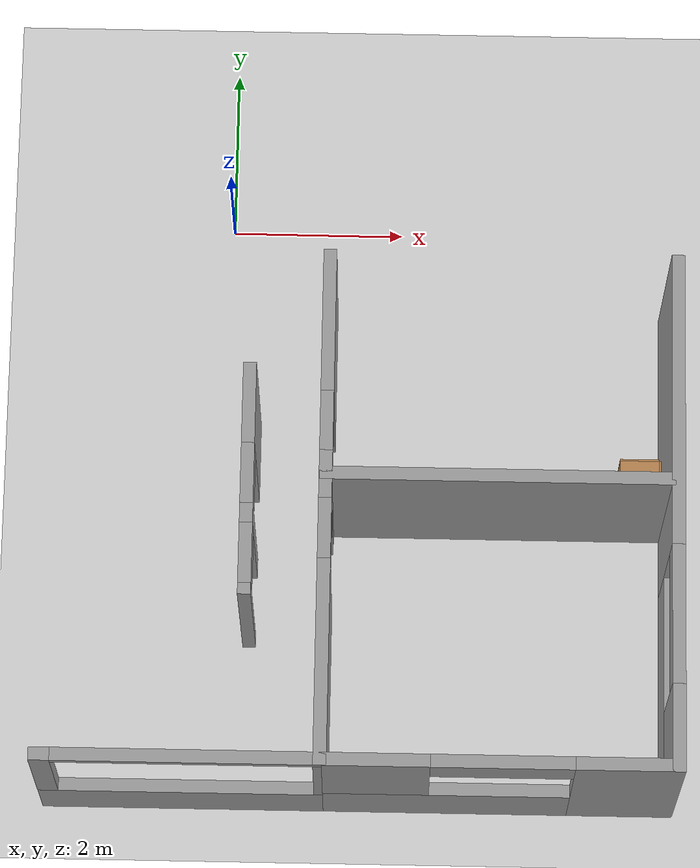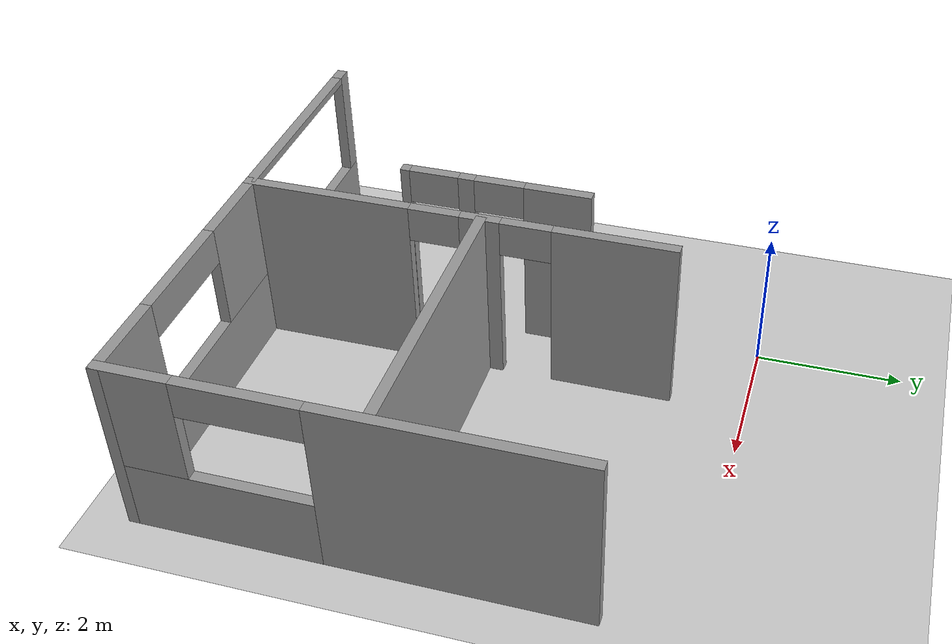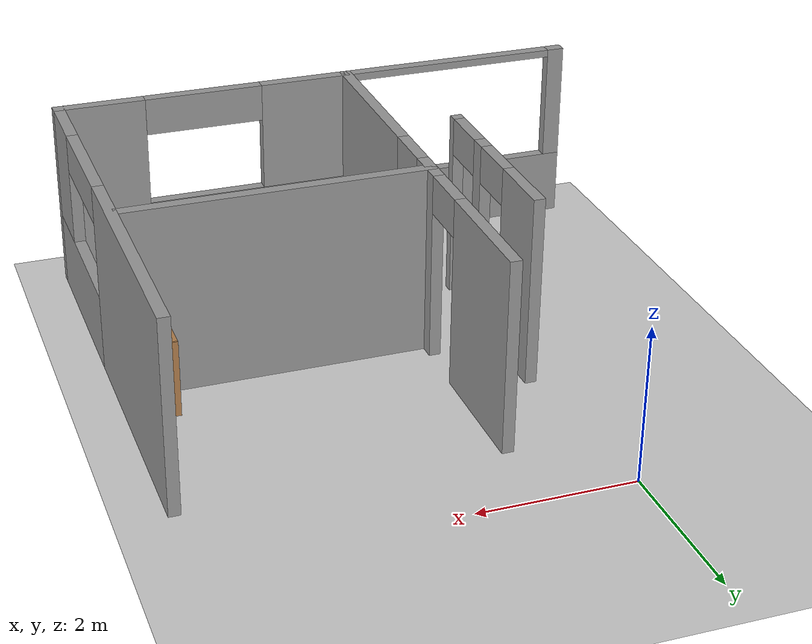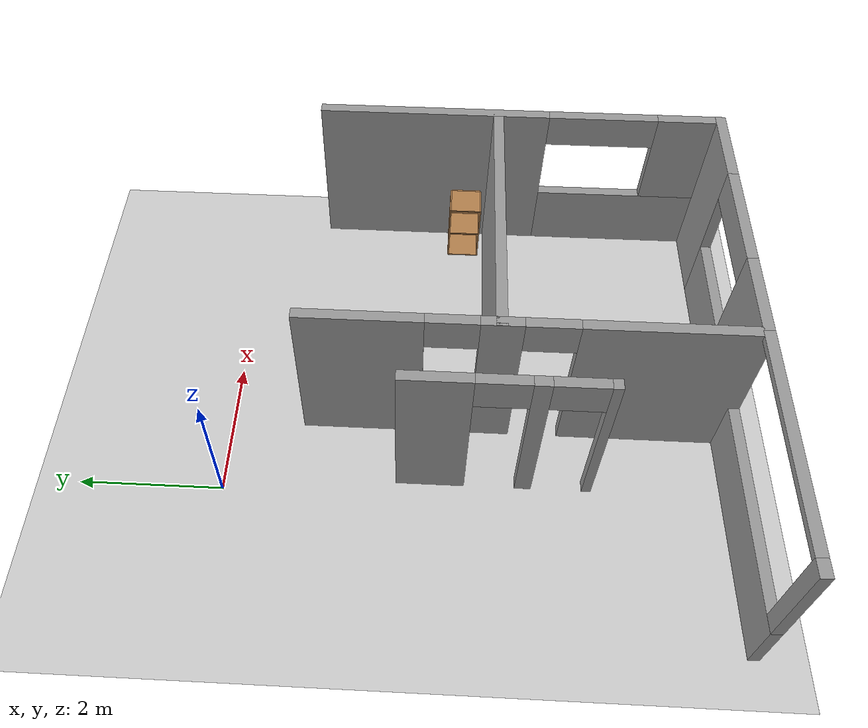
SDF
<sdf version="1.7">
 <world name="default">
  <model name="ground_plane">
   <static>1</static>
   <link name="link">
    <collision name="collision">
     <geometry><plane><normal>0 0 1</normal><size>100 100</size></plane></geometry>
     <surface>
      <contact><collide_bitmask>65535</collide_bitmask></contact>
      <friction><ode><mu>100</mu><mu2>50</mu2></ode></friction>
     </surface>
    </collision>
    <visual name="visual">
     <cast_shadows>0</cast_shadows>
     <geometry><plane><normal>0 0 1</normal><size>100 100</size></plane></geometry>
     <material>
      <script><uri>file://media/materials/scripts/gazebo.material</uri><name>Gazebo/Grey</name></script>
     </material>
    </visual>
   </link>
  </model>
  <model name="Myhouse">
   <link name="Wall_17">
    <pose>2.26458 -1.5613 0 0 -0 3.14159</pose>
    <visual name="Wall_17_Visual">
     <pose>0 0 1.25 0 -0 0</pose>
     <geometry><box><size>4 0.15 2.5</size></box></geometry>
     <material>
      <script><uri>file://media/materials/scripts/gazebo.material</uri><name>Gazebo/Grey</name></script>
      <ambient>1 1 1 1</ambient>
      <shader type="pixel"/>
     </material>
     <meta><layer>0</layer></meta>
    </visual>
    <collision name="Wall_17_Collision">
     <pose>0 0 1.25 0 -0 0</pose>
     <geometry><box><size>4 0.15 2.5</size></box></geometry>
     <surface>
      <friction>
       <ode><mu>1</mu><mu2>1</mu2><fdir1>0 0 0</fdir1><slip1>0</slip1><slip2>0</slip2></ode>
       <torsional>
        <coefficient>1</coefficient>
        <patch_radius>0</patch_radius>
        <surface_radius>0</surface_radius>
        <use_patch_radius>1</use_patch_radius>
        <ode><slip>0</slip></ode>
       </torsional>
      </friction>
      <bounce><restitution_coefficient>0</restitution_coefficient><threshold>1e+06</threshold></bounce>
      <contact>
       <collide_without_contact>0</collide_without_contact>
       <collide_without_contact_bitmask>1</collide_without_contact_bitmask>
       <collide_bitmask>1</collide_bitmask>
       <ode>
        <soft_cfm>0</soft_cfm>
        <soft_erp>0.2</soft_erp>
        <kp>1e+13</kp>
        <kd>1</kd>
        <max_vel>0.01</max_vel>
        <min_depth>0</min_depth>
       </ode>
       <bullet>
        <split_impulse>1</split_impulse>
        <split_impulse_penetration_threshold>-0.01</split_impulse_penetration_threshold>
        <soft_cfm>0</soft_cfm>
        <soft_erp>0.2</soft_erp>
        <kp>1e+13</kp>
        <kd>1</kd>
       </bullet>
      </contact>
     </surface>
    </collision>
   </link>
   <link name="Wall_23">
    <pose>0.334124 -1.9144 0 0 -0 1.5708</pose>
    <visual name="Wall_23_Visual_0">
     <pose>-1.81879 0 1.25 0 -0 0</pose>
     <geometry><box><size>2.36243 0.15 2.5</size></box></geometry>
     <material>
      <script><uri>file://media/materials/scripts/gazebo.material</uri><name>Gazebo/Grey</name></script>
      <ambient>1 1 1 1</ambient>
      <shader type="pixel"/>
     </material>
     <meta><layer>0</layer></meta>
    </visual>
    <visual name="Wall_23_Visual_1">
     <pose>0.340045 0 1.25 0 -0 0</pose>
     <geometry><box><size>0.555232 0.15 2.5</size></box></geometry>
     <material>
      <script><uri>file://media/materials/scripts/gazebo.material</uri><name>Gazebo/Grey</name></script>
      <ambient>1 1 1 1</ambient>
      <shader type="pixel"/>
     </material>
     <meta><layer>0</layer></meta>
    </visual>
    <visual name="Wall_23_Visual_2">
     <pose>2.15883 0 1.25 0 -0 0</pose>
     <geometry><box><size>1.68234 0.15 2.5</size></box></geometry>
     <material>
      <script><uri>file://media/materials/scripts/gazebo.material</uri><name>Gazebo/Grey</name></script>
      <ambient>1 1 1 1</ambient>
      <shader type="pixel"/>
     </material>
     <meta><layer>0</layer></meta>
    </visual>
    <visual name="Wall_23_Visual_3">
     <pose>-0.287571 0 2.25 0 -0 0</pose>
     <geometry><box><size>0.7 0.15 0.5</size></box></geometry>
     <material>
      <script><uri>file://media/materials/scripts/gazebo.material</uri><name>Gazebo/Grey</name></script>
      <ambient>1 1 1 1</ambient>
      <shader type="pixel"/>
     </material>
     <meta><layer>0</layer></meta>
    </visual>
    <visual name="Wall_23_Visual_4">
     <pose>0.967661 0 2.25 0 -0 0</pose>
     <geometry><box><size>0.7 0.15 0.5</size></box></geometry>
     <material>
      <script><uri>file://media/materials/scripts/gazebo.material</uri><name>Gazebo/Grey</name></script>
      <ambient>1 1 1 1</ambient>
      <shader type="pixel"/>
     </material>
     <meta><layer>0</layer></meta>
    </visual>
    <collision name="Wall_23_Collision_0">
     <pose>-1.81879 0 1.25 0 -0 0</pose>
     <geometry><box><size>2.36243 0.15 2.5</size></box></geometry>
     <surface>
      <friction>
       <ode><mu>1</mu><mu2>1</mu2><fdir1>0 0 0</fdir1><slip1>0</slip1><slip2>0</slip2></ode>
       <torsional>
        <coefficient>1</coefficient>
        <patch_radius>0</patch_radius>
        <surface_radius>0</surface_radius>
        <use_patch_radius>1</use_patch_radius>
        <ode><slip>0</slip></ode>
       </torsional>
      </friction>
      <bounce><restitution_coefficient>0</restitution_coefficient><threshold>1e+06</threshold></bounce>
      <contact>
       <collide_without_contact>0</collide_without_contact>
       <collide_without_contact_bitmask>1</collide_without_contact_bitmask>
       <collide_bitmask>1</collide_bitmask>
       <ode>
        <soft_cfm>0</soft_cfm>
        <soft_erp>0.2</soft_erp>
        <kp>1e+13</kp>
        <kd>1</kd>
        <max_vel>0.01</max_vel>
        <min_depth>0</min_depth>
       </ode>
       <bullet>
        <split_impulse>1</split_impulse>
        <split_impulse_penetration_threshold>-0.01</split_impulse_penetration_threshold>
        <soft_cfm>0</soft_cfm>
        <soft_erp>0.2</soft_erp>
        <kp>1e+13</kp>
        <kd>1</kd>
       </bullet>
      </contact>
     </surface>
    </collision>
    <collision name="Wall_23_Collision_1">
     <pose>0.340045 0 1.25 0 -0 0</pose>
     <geometry><box><size>0.555232 0.15 2.5</size></box></geometry>
     <surface>
      <friction>
       <ode><mu>1</mu><mu2>1</mu2><fdir1>0 0 0</fdir1><slip1>0</slip1><slip2>0</slip2></ode>
       <torsional>
        <coefficient>1</coefficient>
        <patch_radius>0</patch_radius>
        <surface_radius>0</surface_radius>
        <use_patch_radius>1</use_patch_radius>
        <ode><slip>0</slip></ode>
       </torsional>
      </friction>
      <bounce><restitution_coefficient>0</restitution_coefficient><threshold>1e+06</threshold></bounce>
      <contact>
       <collide_without_contact>0</collide_without_contact>
       <collide_without_contact_bitmask>1</collide_without_contact_bitmask>
       <collide_bitmask>1</collide_bitmask>
       <ode>
        <soft_cfm>0</soft_cfm>
        <soft_erp>0.2</soft_erp>
        <kp>1e+13</kp>
        <kd>1</kd>
        <max_vel>0.01</max_vel>
        <min_depth>0</min_depth>
       </ode>
       <bullet>
        <split_impulse>1</split_impulse>
        <split_impulse_penetration_threshold>-0.01</split_impulse_penetration_threshold>
        <soft_cfm>0</soft_cfm>
        <soft_erp>0.2</soft_erp>
        <kp>1e+13</kp>
        <kd>1</kd>
       </bullet>
      </contact>
     </surface>
    </collision>
    <collision name="Wall_23_Collision_2">
     <pose>2.15883 0 1.25 0 -0 0</pose>
     <geometry><box><size>1.68234 0.15 2.5</size></box></geometry>
     <surface>
      <friction>
       <ode><mu>1</mu><mu2>1</mu2><fdir1>0 0 0</fdir1><slip1>0</slip1><slip2>0</slip2></ode>
       <torsional>
        <coefficient>1</coefficient>
        <patch_radius>0</patch_radius>
        <surface_radius>0</surface_radius>
        <use_patch_radius>1</use_patch_radius>
        <ode><slip>0</slip></ode>
       </torsional>
      </friction>
      <bounce><restitution_coefficient>0</restitution_coefficient><threshold>1e+06</threshold></bounce>
      <contact>
       <collide_without_contact>0</collide_without_contact>
       <collide_without_contact_bitmask>1</collide_without_contact_bitmask>
       <collide_bitmask>1</collide_bitmask>
       <ode>
        <soft_cfm>0</soft_cfm>
        <soft_erp>0.2</soft_erp>
        <kp>1e+13</kp>
        <kd>1</kd>
        <max_vel>0.01</max_vel>
        <min_depth>0</min_depth>
       </ode>
       <bullet>
        <split_impulse>1</split_impulse>
        <split_impulse_penetration_threshold>-0.01</split_impulse_penetration_threshold>
        <soft_cfm>0</soft_cfm>
        <soft_erp>0.2</soft_erp>
        <kp>1e+13</kp>
        <kd>1</kd>
       </bullet>
      </contact>
     </surface>
    </collision>
    <collision name="Wall_23_Collision_3">
     <pose>-0.287571 0 2.25 0 -0 0</pose>
     <geometry><box><size>0.7 0.15 0.5</size></box></geometry>
     <surface>
      <friction>
       <ode><mu>1</mu><mu2>1</mu2><fdir1>0 0 0</fdir1><slip1>0</slip1><slip2>0</slip2></ode>
       <torsional>
        <coefficient>1</coefficient>
        <patch_radius>0</patch_radius>
        <surface_radius>0</surface_radius>
        <use_patch_radius>1</use_patch_radius>
        <ode><slip>0</slip></ode>
       </torsional>
      </friction>
      <bounce><restitution_coefficient>0</restitution_coefficient><threshold>1e+06</threshold></bounce>
      <contact>
       <collide_without_contact>0</collide_without_contact>
       <collide_without_contact_bitmask>1</collide_without_contact_bitmask>
       <collide_bitmask>1</collide_bitmask>
       <ode>
        <soft_cfm>0</soft_cfm>
        <soft_erp>0.2</soft_erp>
        <kp>1e+13</kp>
        <kd>1</kd>
        <max_vel>0.01</max_vel>
        <min_depth>0</min_depth>
       </ode>
       <bullet>
        <split_impulse>1</split_impulse>
        <split_impulse_penetration_threshold>-0.01</split_impulse_penetration_threshold>
        <soft_cfm>0</soft_cfm>
        <soft_erp>0.2</soft_erp>
        <kp>1e+13</kp>
        <kd>1</kd>
       </bullet>
      </contact>
     </surface>
    </collision>
    <collision name="Wall_23_Collision_4">
     <pose>0.967661 0 2.25 0 -0 0</pose>
     <geometry><box><size>0.7 0.15 0.5</size></box></geometry>
     <surface>
      <friction>
       <ode><mu>1</mu><mu2>1</mu2><fdir1>0 0 0</fdir1><slip1>0</slip1><slip2>0</slip2></ode>
       <torsional>
        <coefficient>1</coefficient>
        <patch_radius>0</patch_radius>
        <surface_radius>0</surface_radius>
        <use_patch_radius>1</use_patch_radius>
        <ode><slip>0</slip></ode>
       </torsional>
      </friction>
      <bounce><restitution_coefficient>0</restitution_coefficient><threshold>1e+06</threshold></bounce>
      <contact>
       <collide_without_contact>0</collide_without_contact>
       <collide_without_contact_bitmask>1</collide_without_contact_bitmask>
       <collide_bitmask>1</collide_bitmask>
       <ode>
        <soft_cfm>0</soft_cfm>
        <soft_erp>0.2</soft_erp>
        <kp>1e+13</kp>
        <kd>1</kd>
        <max_vel>0.01</max_vel>
        <min_depth>0</min_depth>
       </ode>
       <bullet>
        <split_impulse>1</split_impulse>
        <split_impulse_penetration_threshold>-0.01</split_impulse_penetration_threshold>
        <soft_cfm>0</soft_cfm>
        <soft_erp>0.2</soft_erp>
        <kp>1e+13</kp>
        <kd>1</kd>
       </bullet>
      </contact>
     </surface>
    </collision>
   </link>
   <link name="Wall_33">
    <pose>-0.546419 -1.6345 0 0 -0 1.5708</pose>
    <visual name="Wall_33_Visual_0">
     <pose>-1.28707 0 1.25 0 -0 0</pose>
     <geometry><box><size>0.129459 0.15 2.5</size></box></geometry>
     <material>
      <script><uri>file://media/materials/scripts/gazebo.material</uri><name>Gazebo/Grey</name></script>
      <ambient>1 1 1 1</ambient>
      <shader type="pixel"/>
     </material>
     <meta><layer>0</layer></meta>
    </visual>
    <visual name="Wall_33_Visual_1">
     <pose>-0.408085 0 1.25 0 -0 0</pose>
     <geometry><box><size>0.228511 0.15 2.5</size></box></geometry>
     <material>
      <script><uri>file://media/materials/scripts/gazebo.material</uri><name>Gazebo/Grey</name></script>
      <ambient>1 1 1 1</ambient>
      <shader type="pixel"/>
     </material>
     <meta><layer>0</layer></meta>
    </visual>
    <visual name="Wall_33_Visual_2">
     <pose>0.878985 0 1.25 0 -0 0</pose>
     <geometry><box><size>0.945628 0.15 2.5</size></box></geometry>
     <material>
      <script><uri>file://media/materials/scripts/gazebo.material</uri><name>Gazebo/Grey</name></script>
      <ambient>1 1 1 1</ambient>
      <shader type="pixel"/>
     </material>
     <meta><layer>0</layer></meta>
    </visual>
    <visual name="Wall_33_Visual_3">
     <pose>-0.87234 0 2.25 0 -0 0</pose>
     <geometry><box><size>0.7 0.15 0.5</size></box></geometry>
     <material>
      <script><uri>file://media/materials/scripts/gazebo.material</uri><name>Gazebo/Grey</name></script>
      <ambient>1 1 1 1</ambient>
      <shader type="pixel"/>
     </material>
     <meta><layer>0</layer></meta>
    </visual>
    <visual name="Wall_33_Visual_4">
     <pose>0.05617 0 2.25 0 -0 0</pose>
     <geometry><box><size>0.7 0.15 0.5</size></box></geometry>
     <material>
      <script><uri>file://media/materials/scripts/gazebo.material</uri><name>Gazebo/Grey</name></script>
      <ambient>1 1 1 1</ambient>
      <shader type="pixel"/>
     </material>
     <meta><layer>0</layer></meta>
    </visual>
    <collision name="Wall_33_Collision_0">
     <pose>-1.28707 0 1.25 0 -0 0</pose>
     <geometry><box><size>0.129459 0.15 2.5</size></box></geometry>
     <surface>
      <friction>
       <ode><mu>1</mu><mu2>1</mu2><fdir1>0 0 0</fdir1><slip1>0</slip1><slip2>0</slip2></ode>
       <torsional>
        <coefficient>1</coefficient>
        <patch_radius>0</patch_radius>
        <surface_radius>0</surface_radius>
        <use_patch_radius>1</use_patch_radius>
        <ode><slip>0</slip></ode>
       </torsional>
      </friction>
      <bounce><restitution_coefficient>0</restitution_coefficient><threshold>1e+06</threshold></bounce>
      <contact>
       <collide_without_contact>0</collide_without_contact>
       <collide_without_contact_bitmask>1</collide_without_contact_bitmask>
       <collide_bitmask>1</collide_bitmask>
       <ode>
        <soft_cfm>0</soft_cfm>
        <soft_erp>0.2</soft_erp>
        <kp>1e+13</kp>
        <kd>1</kd>
        <max_vel>0.01</max_vel>
        <min_depth>0</min_depth>
       </ode>
       <bullet>
        <split_impulse>1</split_impulse>
        <split_impulse_penetration_threshold>-0.01</split_impulse_penetration_threshold>
        <soft_cfm>0</soft_cfm>
        <soft_erp>0.2</soft_erp>
        <kp>1e+13</kp>
        <kd>1</kd>
       </bullet>
      </contact>
     </surface>
    </collision>
    <collision name="Wall_33_Collision_1">
     <pose>-0.408085 0 1.25 0 -0 0</pose>
     <geometry><box><size>0.228511 0.15 2.5</size></box></geometry>
     <surface>
      <friction>
       <ode><mu>1</mu><mu2>1</mu2><fdir1>0 0 0</fdir1><slip1>0</slip1><slip2>0</slip2></ode>
       <torsional>
        <coefficient>1</coefficient>
        <patch_radius>0</patch_radius>
        <surface_radius>0</surface_radius>
        <use_patch_radius>1</use_patch_radius>
        <ode><slip>0</slip></ode>
       </torsional>
      </friction>
      <bounce><restitution_coefficient>0</restitution_coefficient><threshold>1e+06</threshold></bounce>
      <contact>
       <collide_without_contact>0</collide_without_contact>
       <collide_without_contact_bitmask>1</collide_without_contact_bitmask>
       <collide_bitmask>1</collide_bitmask>
       <ode>
        <soft_cfm>0</soft_cfm>
        <soft_erp>0.2</soft_erp>
        <kp>1e+13</kp>
        <kd>1</kd>
        <max_vel>0.01</max_vel>
        <min_depth>0</min_depth>
       </ode>
       <bullet>
        <split_impulse>1</split_impulse>
        <split_impulse_penetration_threshold>-0.01</split_impulse_penetration_threshold>
        <soft_cfm>0</soft_cfm>
        <soft_erp>0.2</soft_erp>
        <kp>1e+13</kp>
        <kd>1</kd>
       </bullet>
      </contact>
     </surface>
    </collision>
    <collision name="Wall_33_Collision_2">
     <pose>0.878985 0 1.25 0 -0 0</pose>
     <geometry><box><size>0.945628 0.15 2.5</size></box></geometry>
     <surface>
      <friction>
       <ode><mu>1</mu><mu2>1</mu2><fdir1>0 0 0</fdir1><slip1>0</slip1><slip2>0</slip2></ode>
       <torsional>
        <coefficient>1</coefficient>
        <patch_radius>0</patch_radius>
        <surface_radius>0</surface_radius>
        <use_patch_radius>1</use_patch_radius>
        <ode><slip>0</slip></ode>
       </torsional>
      </friction>
      <bounce><restitution_coefficient>0</restitution_coefficient><threshold>1e+06</threshold></bounce>
      <contact>
       <collide_without_contact>0</collide_without_contact>
       <collide_without_contact_bitmask>1</collide_without_contact_bitmask>
       <collide_bitmask>1</collide_bitmask>
       <ode>
        <soft_cfm>0</soft_cfm>
        <soft_erp>0.2</soft_erp>
        <kp>1e+13</kp>
        <kd>1</kd>
        <max_vel>0.01</max_vel>
        <min_depth>0</min_depth>
       </ode>
       <bullet>
        <split_impulse>1</split_impulse>
        <split_impulse_penetration_threshold>-0.01</split_impulse_penetration_threshold>
        <soft_cfm>0</soft_cfm>
        <soft_erp>0.2</soft_erp>
        <kp>1e+13</kp>
        <kd>1</kd>
       </bullet>
      </contact>
     </surface>
    </collision>
    <collision name="Wall_33_Collision_3">
     <pose>-0.87234 0 2.25 0 -0 0</pose>
     <geometry><box><size>0.7 0.15 0.5</size></box></geometry>
     <surface>
      <friction>
       <ode><mu>1</mu><mu2>1</mu2><fdir1>0 0 0</fdir1><slip1>0</slip1><slip2>0</slip2></ode>
       <torsional>
        <coefficient>1</coefficient>
        <patch_radius>0</patch_radius>
        <surface_radius>0</surface_radius>
        <use_patch_radius>1</use_patch_radius>
        <ode><slip>0</slip></ode>
       </torsional>
      </friction>
      <bounce><restitution_coefficient>0</restitution_coefficient><threshold>1e+06</threshold></bounce>
      <contact>
       <collide_without_contact>0</collide_without_contact>
       <collide_without_contact_bitmask>1</collide_without_contact_bitmask>
       <collide_bitmask>1</collide_bitmask>
       <ode>
        <soft_cfm>0</soft_cfm>
        <soft_erp>0.2</soft_erp>
        <kp>1e+13</kp>
        <kd>1</kd>
        <max_vel>0.01</max_vel>
        <min_depth>0</min_depth>
       </ode>
       <bullet>
        <split_impulse>1</split_impulse>
        <split_impulse_penetration_threshold>-0.01</split_impulse_penetration_threshold>
        <soft_cfm>0</soft_cfm>
        <soft_erp>0.2</soft_erp>
        <kp>1e+13</kp>
        <kd>1</kd>
       </bullet>
      </contact>
     </surface>
    </collision>
    <collision name="Wall_33_Collision_4">
     <pose>0.05617 0 2.25 0 -0 0</pose>
     <geometry><box><size>0.7 0.15 0.5</size></box></geometry>
     <surface>
      <friction>
       <ode><mu>1</mu><mu2>1</mu2><fdir1>0 0 0</fdir1><slip1>0</slip1><slip2>0</slip2></ode>
       <torsional>
        <coefficient>1</coefficient>
        <patch_radius>0</patch_radius>
        <surface_radius>0</surface_radius>
        <use_patch_radius>1</use_patch_radius>
        <ode><slip>0</slip></ode>
       </torsional>
      </friction>
      <bounce><restitution_coefficient>0</restitution_coefficient><threshold>1e+06</threshold></bounce>
      <contact>
       <collide_without_contact>0</collide_without_contact>
       <collide_without_contact_bitmask>1</collide_without_contact_bitmask>
       <collide_bitmask>1</collide_bitmask>
       <ode>
        <soft_cfm>0</soft_cfm>
        <soft_erp>0.2</soft_erp>
        <kp>1e+13</kp>
        <kd>1</kd>
        <max_vel>0.01</max_vel>
        <min_depth>0</min_depth>
       </ode>
       <bullet>
        <split_impulse>1</split_impulse>
        <split_impulse_penetration_threshold>-0.01</split_impulse_penetration_threshold>
        <soft_cfm>0</soft_cfm>
        <soft_erp>0.2</soft_erp>
        <kp>1e+13</kp>
        <kd>1</kd>
       </bullet>
      </contact>
     </surface>
    </collision>
   </link>
   <link name="Wall_6">
    <pose>4.29836 -1.91579 0 0 0 -1.5708</pose>
    <visual name="Wall_6_Visual_0">
     <pose>-1.29915 0 1.25 0 -0 0</pose>
     <geometry><box><size>3.4017 0.15 2.5</size></box></geometry>
     <material>
      <script><uri>file://media/materials/scripts/gazebo.material</uri><name>Gazebo/Grey</name></script>
      <ambient>1 1 1 1</ambient>
      <shader type="pixel"/>
     </material>
     <meta><layer>0</layer></meta>
    </visual>
    <visual name="Wall_6_Visual_1">
     <pose>1.70085 0 0.5 0 -0 0</pose>
     <geometry><box><size>2.5983 0.15 1</size></box></geometry>
     <material>
      <script><uri>file://media/materials/scripts/gazebo.material</uri><name>Gazebo/Grey</name></script>
      <ambient>1 1 1 1</ambient>
      <shader type="pixel"/>
     </material>
     <meta><layer>0</layer></meta>
    </visual>
    <visual name="Wall_6_Visual_2">
     <pose>2.50085 0 1.75 0 -0 0</pose>
     <geometry><box><size>0.998297 0.15 1.5</size></box></geometry>
     <material>
      <script><uri>file://media/materials/scripts/gazebo.material</uri><name>Gazebo/Grey</name></script>
      <ambient>1 1 1 1</ambient>
      <shader type="pixel"/>
     </material>
     <meta><layer>0</layer></meta>
    </visual>
    <visual name="Wall_6_Visual_3">
     <pose>1.2017 0 2.25 0 -0 0</pose>
     <geometry><box><size>1.6 0.15 0.5</size></box></geometry>
     <material>
      <script><uri>file://media/materials/scripts/gazebo.material</uri><name>Gazebo/Grey</name></script>
      <ambient>1 1 1 1</ambient>
      <shader type="pixel"/>
     </material>
     <meta><layer>0</layer></meta>
    </visual>
    <collision name="Wall_6_Collision_0">
     <pose>-1.29915 0 1.25 0 -0 0</pose>
     <geometry><box><size>3.4017 0.15 2.5</size></box></geometry>
     <surface>
      <friction>
       <ode><mu>1</mu><mu2>1</mu2><fdir1>0 0 0</fdir1><slip1>0</slip1><slip2>0</slip2></ode>
       <torsional>
        <coefficient>1</coefficient>
        <patch_radius>0</patch_radius>
        <surface_radius>0</surface_radius>
        <use_patch_radius>1</use_patch_radius>
        <ode><slip>0</slip></ode>
       </torsional>
      </friction>
      <bounce><restitution_coefficient>0</restitution_coefficient><threshold>1e+06</threshold></bounce>
      <contact>
       <collide_without_contact>0</collide_without_contact>
       <collide_without_contact_bitmask>1</collide_without_contact_bitmask>
       <collide_bitmask>1</collide_bitmask>
       <ode>
        <soft_cfm>0</soft_cfm>
        <soft_erp>0.2</soft_erp>
        <kp>1e+13</kp>
        <kd>1</kd>
        <max_vel>0.01</max_vel>
        <min_depth>0</min_depth>
       </ode>
       <bullet>
        <split_impulse>1</split_impulse>
        <split_impulse_penetration_threshold>-0.01</split_impulse_penetration_threshold>
        <soft_cfm>0</soft_cfm>
        <soft_erp>0.2</soft_erp>
        <kp>1e+13</kp>
        <kd>1</kd>
       </bullet>
      </contact>
     </surface>
    </collision>
    <collision name="Wall_6_Collision_1">
     <pose>1.70085 0 0.5 0 -0 0</pose>
     <geometry><box><size>2.5983 0.15 1</size></box></geometry>
     <surface>
      <friction>
       <ode><mu>1</mu><mu2>1</mu2><fdir1>0 0 0</fdir1><slip1>0</slip1><slip2>0</slip2></ode>
       <torsional>
        <coefficient>1</coefficient>
        <patch_radius>0</patch_radius>
        <surface_radius>0</surface_radius>
        <use_patch_radius>1</use_patch_radius>
        <ode><slip>0</slip></ode>
       </torsional>
      </friction>
      <bounce><restitution_coefficient>0</restitution_coefficient><threshold>1e+06</threshold></bounce>
      <contact>
       <collide_without_contact>0</collide_without_contact>
       <collide_without_contact_bitmask>1</collide_without_contact_bitmask>
       <collide_bitmask>1</collide_bitmask>
       <ode>
        <soft_cfm>0</soft_cfm>
        <soft_erp>0.2</soft_erp>
        <kp>1e+13</kp>
        <kd>1</kd>
        <max_vel>0.01</max_vel>
        <min_depth>0</min_depth>
       </ode>
       <bullet>
        <split_impulse>1</split_impulse>
        <split_impulse_penetration_threshold>-0.01</split_impulse_penetration_threshold>
        <soft_cfm>0</soft_cfm>
        <soft_erp>0.2</soft_erp>
        <kp>1e+13</kp>
        <kd>1</kd>
       </bullet>
      </contact>
     </surface>
    </collision>
    <collision name="Wall_6_Collision_2">
     <pose>2.50085 0 1.75 0 -0 0</pose>
     <geometry><box><size>0.998297 0.15 1.5</size></box></geometry>
     <surface>
      <friction>
       <ode><mu>1</mu><mu2>1</mu2><fdir1>0 0 0</fdir1><slip1>0</slip1><slip2>0</slip2></ode>
       <torsional>
        <coefficient>1</coefficient>
        <patch_radius>0</patch_radius>
        <surface_radius>0</surface_radius>
        <use_patch_radius>1</use_patch_radius>
        <ode><slip>0</slip></ode>
       </torsional>
      </friction>
      <bounce><restitution_coefficient>0</restitution_coefficient><threshold>1e+06</threshold></bounce>
      <contact>
       <collide_without_contact>0</collide_without_contact>
       <collide_without_contact_bitmask>1</collide_without_contact_bitmask>
       <collide_bitmask>1</collide_bitmask>
       <ode>
        <soft_cfm>0</soft_cfm>
        <soft_erp>0.2</soft_erp>
        <kp>1e+13</kp>
        <kd>1</kd>
        <max_vel>0.01</max_vel>
        <min_depth>0</min_depth>
       </ode>
       <bullet>
        <split_impulse>1</split_impulse>
        <split_impulse_penetration_threshold>-0.01</split_impulse_penetration_threshold>
        <soft_cfm>0</soft_cfm>
        <soft_erp>0.2</soft_erp>
        <kp>1e+13</kp>
        <kd>1</kd>
       </bullet>
      </contact>
     </surface>
    </collision>
    <collision name="Wall_6_Collision_3">
     <pose>1.2017 0 2.25 0 -0 0</pose>
     <geometry><box><size>1.6 0.15 0.5</size></box></geometry>
     <surface>
      <friction>
       <ode><mu>1</mu><mu2>1</mu2><fdir1>0 0 0</fdir1><slip1>0</slip1><slip2>0</slip2></ode>
       <torsional>
        <coefficient>1</coefficient>
        <patch_radius>0</patch_radius>
        <surface_radius>0</surface_radius>
        <use_patch_radius>1</use_patch_radius>
        <ode><slip>0</slip></ode>
       </torsional>
      </friction>
      <bounce><restitution_coefficient>0</restitution_coefficient><threshold>1e+06</threshold></bounce>
      <contact>
       <collide_without_contact>0</collide_without_contact>
       <collide_without_contact_bitmask>1</collide_without_contact_bitmask>
       <collide_bitmask>1</collide_bitmask>
       <ode>
        <soft_cfm>0</soft_cfm>
        <soft_erp>0.2</soft_erp>
        <kp>1e+13</kp>
        <kd>1</kd>
        <max_vel>0.01</max_vel>
        <min_depth>0</min_depth>
       </ode>
       <bullet>
        <split_impulse>1</split_impulse>
        <split_impulse_penetration_threshold>-0.01</split_impulse_penetration_threshold>
        <soft_cfm>0</soft_cfm>
        <soft_erp>0.2</soft_erp>
        <kp>1e+13</kp>
        <kd>1</kd>
       </bullet>
      </contact>
     </surface>
    </collision>
   </link>
   <link name="Wall_7">
    <pose>0.748356 -4.84079 0 0 -0 3.14159</pose>
    <visual name="Wall_7_Visual_0">
     <pose>-3.01652 0 1.25 0 -0 0</pose>
     <geometry><box><size>1.21696 0.15 2.5</size></box></geometry>
     <material>
      <script><uri>file://media/materials/scripts/gazebo.material</uri><name>Gazebo/Grey</name></script>
      <ambient>1 1 1 1</ambient>
      <shader type="pixel"/>
     </material>
     <meta><layer>0</layer></meta>
    </visual>
    <visual name="Wall_7_Visual_1">
     <pose>-1.00798 0 0.5 0 -0 0</pose>
     <geometry><box><size>2.80012 0.15 1</size></box></geometry>
     <material>
      <script><uri>file://media/materials/scripts/gazebo.material</uri><name>Gazebo/Grey</name></script>
      <ambient>1 1 1 1</ambient>
      <shader type="pixel"/>
     </material>
     <meta><layer>0</layer></meta>
    </visual>
    <visual name="Wall_7_Visual_3">
     <pose>3.50854 0 1.7 0 -0 0</pose>
     <geometry><box><size>0.232916 0.15 1.6</size></box></geometry>
     <material>
      <script><uri>file://media/materials/scripts/gazebo.material</uri><name>Gazebo/Grey</name></script>
      <ambient>1 1 1 1</ambient>
      <shader type="pixel"/>
     </material>
     <meta><layer>0</layer></meta>
    </visual>
    <visual name="Wall_7_Visual_2">
     <pose>2.00854 0 0.45 0 -0 0</pose>
     <geometry><box><size>3.23292 0.15 0.9</size></box></geometry>
     <material>
      <script><uri>file://media/materials/scripts/gazebo.material</uri><name>Gazebo/Grey</name></script>
      <ambient>1 1 1 1</ambient>
      <shader type="pixel"/>
     </material>
     <meta><layer>0</layer></meta>
    </visual>
    <visual name="Wall_7_Visual_4">
     <pose>-0.207978 0 1.75 0 -0 0</pose>
     <geometry><box><size>1.20012 0.15 1.5</size></box></geometry>
     <material>
      <script><uri>file://media/materials/scripts/gazebo.material</uri><name>Gazebo/Grey</name></script>
      <ambient>1 1 1 1</ambient>
      <shader type="pixel"/>
     </material>
     <meta><layer>0</layer></meta>
    </visual>
    <visual name="Wall_7_Visual_5">
     <pose>-1.60804 0 2.25 0 -0 0</pose>
     <geometry><box><size>1.6 0.15 0.5</size></box></geometry>
     <material>
      <script><uri>file://media/materials/scripts/gazebo.material</uri><name>Gazebo/Grey</name></script>
      <ambient>1 1 1 1</ambient>
      <shader type="pixel"/>
     </material>
     <meta><layer>0</layer></meta>
    </visual>
    <visual name="Wall_7_Visual_6">
     <pose>1.89208 0 2.45 0 -0 0</pose>
     <geometry><box><size>3 0.15 0.1</size></box></geometry>
     <material>
      <script><uri>file://media/materials/scripts/gazebo.material</uri><name>Gazebo/Grey</name></script>
      <ambient>1 1 1 1</ambient>
      <shader type="pixel"/>
     </material>
     <meta><layer>0</layer></meta>
    </visual>
    <collision name="Wall_7_Collision_2">
     <pose>2.00854 0 0.45 0 -0 0</pose>
     <geometry><box><size>3.23292 0.15 0.9</size></box></geometry>
     <surface>
      <friction>
       <ode><mu>1</mu><mu2>1</mu2><fdir1>0 0 0</fdir1><slip1>0</slip1><slip2>0</slip2></ode>
       <torsional>
        <coefficient>1</coefficient>
        <patch_radius>0</patch_radius>
        <surface_radius>0</surface_radius>
        <use_patch_radius>1</use_patch_radius>
        <ode><slip>0</slip></ode>
       </torsional>
      </friction>
      <bounce><restitution_coefficient>0</restitution_coefficient><threshold>1e+06</threshold></bounce>
      <contact>
       <collide_without_contact>0</collide_without_contact>
       <collide_without_contact_bitmask>1</collide_without_contact_bitmask>
       <collide_bitmask>1</collide_bitmask>
       <ode>
        <soft_cfm>0</soft_cfm>
        <soft_erp>0.2</soft_erp>
        <kp>1e+13</kp>
        <kd>1</kd>
        <max_vel>0.01</max_vel>
        <min_depth>0</min_depth>
       </ode>
       <bullet>
        <split_impulse>1</split_impulse>
        <split_impulse_penetration_threshold>-0.01</split_impulse_penetration_threshold>
        <soft_cfm>0</soft_cfm>
        <soft_erp>0.2</soft_erp>
        <kp>1e+13</kp>
        <kd>1</kd>
       </bullet>
      </contact>
     </surface>
    </collision>
    <collision name="Wall_7_Collision_0">
     <pose>-3.01652 0 1.25 0 -0 0</pose>
     <geometry><box><size>1.21696 0.15 2.5</size></box></geometry>
     <surface>
      <friction>
       <ode><mu>1</mu><mu2>1</mu2><fdir1>0 0 0</fdir1><slip1>0</slip1><slip2>0</slip2></ode>
       <torsional>
        <coefficient>1</coefficient>
        <patch_radius>0</patch_radius>
        <surface_radius>0</surface_radius>
        <use_patch_radius>1</use_patch_radius>
        <ode><slip>0</slip></ode>
       </torsional>
      </friction>
      <bounce><restitution_coefficient>0</restitution_coefficient><threshold>1e+06</threshold></bounce>
      <contact>
       <collide_without_contact>0</collide_without_contact>
       <collide_without_contact_bitmask>1</collide_without_contact_bitmask>
       <collide_bitmask>1</collide_bitmask>
       <ode>
        <soft_cfm>0</soft_cfm>
        <soft_erp>0.2</soft_erp>
        <kp>1e+13</kp>
        <kd>1</kd>
        <max_vel>0.01</max_vel>
        <min_depth>0</min_depth>
       </ode>
       <bullet>
        <split_impulse>1</split_impulse>
        <split_impulse_penetration_threshold>-0.01</split_impulse_penetration_threshold>
        <soft_cfm>0</soft_cfm>
        <soft_erp>0.2</soft_erp>
        <kp>1e+13</kp>
        <kd>1</kd>
       </bullet>
      </contact>
     </surface>
    </collision>
    <collision name="Wall_7_Collision_1">
     <pose>-1.00798 0 0.5 0 -0 0</pose>
     <geometry><box><size>2.80012 0.15 1</size></box></geometry>
     <surface>
      <friction>
       <ode><mu>1</mu><mu2>1</mu2><fdir1>0 0 0</fdir1><slip1>0</slip1><slip2>0</slip2></ode>
       <torsional>
        <coefficient>1</coefficient>
        <patch_radius>0</patch_radius>
        <surface_radius>0</surface_radius>
        <use_patch_radius>1</use_patch_radius>
        <ode><slip>0</slip></ode>
       </torsional>
      </friction>
      <bounce><restitution_coefficient>0</restitution_coefficient><threshold>1e+06</threshold></bounce>
      <contact>
       <collide_without_contact>0</collide_without_contact>
       <collide_without_contact_bitmask>1</collide_without_contact_bitmask>
       <collide_bitmask>1</collide_bitmask>
       <ode>
        <soft_cfm>0</soft_cfm>
        <soft_erp>0.2</soft_erp>
        <kp>1e+13</kp>
        <kd>1</kd>
        <max_vel>0.01</max_vel>
        <min_depth>0</min_depth>
       </ode>
       <bullet>
        <split_impulse>1</split_impulse>
        <split_impulse_penetration_threshold>-0.01</split_impulse_penetration_threshold>
        <soft_cfm>0</soft_cfm>
        <soft_erp>0.2</soft_erp>
        <kp>1e+13</kp>
        <kd>1</kd>
       </bullet>
      </contact>
     </surface>
    </collision>
    <collision name="Wall_7_Collision_3">
     <pose>3.50854 0 1.7 0 -0 0</pose>
     <geometry><box><size>0.232916 0.15 1.6</size></box></geometry>
     <surface>
      <friction>
       <ode><mu>1</mu><mu2>1</mu2><fdir1>0 0 0</fdir1><slip1>0</slip1><slip2>0</slip2></ode>
       <torsional>
        <coefficient>1</coefficient>
        <patch_radius>0</patch_radius>
        <surface_radius>0</surface_radius>
        <use_patch_radius>1</use_patch_radius>
        <ode><slip>0</slip></ode>
       </torsional>
      </friction>
      <bounce><restitution_coefficient>0</restitution_coefficient><threshold>1e+06</threshold></bounce>
      <contact>
       <collide_without_contact>0</collide_without_contact>
       <collide_without_contact_bitmask>1</collide_without_contact_bitmask>
       <collide_bitmask>1</collide_bitmask>
       <ode>
        <soft_cfm>0</soft_cfm>
        <soft_erp>0.2</soft_erp>
        <kp>1e+13</kp>
        <kd>1</kd>
        <max_vel>0.01</max_vel>
        <min_depth>0</min_depth>
       </ode>
       <bullet>
        <split_impulse>1</split_impulse>
        <split_impulse_penetration_threshold>-0.01</split_impulse_penetration_threshold>
        <soft_cfm>0</soft_cfm>
        <soft_erp>0.2</soft_erp>
        <kp>1e+13</kp>
        <kd>1</kd>
       </bullet>
      </contact>
     </surface>
    </collision>
    <collision name="Wall_7_Collision_4">
     <pose>-0.207978 0 1.75 0 -0 0</pose>
     <geometry><box><size>1.20012 0.15 1.5</size></box></geometry>
     <surface>
      <friction>
       <ode><mu>1</mu><mu2>1</mu2><fdir1>0 0 0</fdir1><slip1>0</slip1><slip2>0</slip2></ode>
       <torsional>
        <coefficient>1</coefficient>
        <patch_radius>0</patch_radius>
        <surface_radius>0</surface_radius>
        <use_patch_radius>1</use_patch_radius>
        <ode><slip>0</slip></ode>
       </torsional>
      </friction>
      <bounce><restitution_coefficient>0</restitution_coefficient><threshold>1e+06</threshold></bounce>
      <contact>
       <collide_without_contact>0</collide_without_contact>
       <collide_without_contact_bitmask>1</collide_without_contact_bitmask>
       <collide_bitmask>1</collide_bitmask>
       <ode>
        <soft_cfm>0</soft_cfm>
        <soft_erp>0.2</soft_erp>
        <kp>1e+13</kp>
        <kd>1</kd>
        <max_vel>0.01</max_vel>
        <min_depth>0</min_depth>
       </ode>
       <bullet>
        <split_impulse>1</split_impulse>
        <split_impulse_penetration_threshold>-0.01</split_impulse_penetration_threshold>
        <soft_cfm>0</soft_cfm>
        <soft_erp>0.2</soft_erp>
        <kp>1e+13</kp>
        <kd>1</kd>
       </bullet>
      </contact>
     </surface>
    </collision>
    <collision name="Wall_7_Collision_5">
     <pose>-1.60804 0 2.25 0 -0 0</pose>
     <geometry><box><size>1.6 0.15 0.5</size></box></geometry>
     <surface>
      <friction>
       <ode><mu>1</mu><mu2>1</mu2><fdir1>0 0 0</fdir1><slip1>0</slip1><slip2>0</slip2></ode>
       <torsional>
        <coefficient>1</coefficient>
        <patch_radius>0</patch_radius>
        <surface_radius>0</surface_radius>
        <use_patch_radius>1</use_patch_radius>
        <ode><slip>0</slip></ode>
       </torsional>
      </friction>
      <bounce><restitution_coefficient>0</restitution_coefficient><threshold>1e+06</threshold></bounce>
      <contact>
       <collide_without_contact>0</collide_without_contact>
       <collide_without_contact_bitmask>1</collide_without_contact_bitmask>
       <collide_bitmask>1</collide_bitmask>
       <ode>
        <soft_cfm>0</soft_cfm>
        <soft_erp>0.2</soft_erp>
        <kp>1e+13</kp>
        <kd>1</kd>
        <max_vel>0.01</max_vel>
        <min_depth>0</min_depth>
       </ode>
       <bullet>
        <split_impulse>1</split_impulse>
        <split_impulse_penetration_threshold>-0.01</split_impulse_penetration_threshold>
        <soft_cfm>0</soft_cfm>
        <soft_erp>0.2</soft_erp>
        <kp>1e+13</kp>
        <kd>1</kd>
       </bullet>
      </contact>
     </surface>
    </collision>
    <collision name="Wall_7_Collision_6">
     <pose>1.89208 0 2.45 0 -0 0</pose>
     <geometry><box><size>3 0.15 0.1</size></box></geometry>
     <surface>
      <friction>
       <ode><mu>1</mu><mu2>1</mu2><fdir1>0 0 0</fdir1><slip1>0</slip1><slip2>0</slip2></ode>
       <torsional>
        <coefficient>1</coefficient>
        <patch_radius>0</patch_radius>
        <surface_radius>0</surface_radius>
        <use_patch_radius>1</use_patch_radius>
        <ode><slip>0</slip></ode>
       </torsional>
      </friction>
      <bounce><restitution_coefficient>0</restitution_coefficient><threshold>1e+06</threshold></bounce>
      <contact>
       <collide_without_contact>0</collide_without_contact>
       <collide_without_contact_bitmask>1</collide_without_contact_bitmask>
       <collide_bitmask>1</collide_bitmask>
       <ode>
        <soft_cfm>0</soft_cfm>
        <soft_erp>0.2</soft_erp>
        <kp>1e+13</kp>
        <kd>1</kd>
        <max_vel>0.01</max_vel>
        <min_depth>0</min_depth>
       </ode>
       <bullet>
        <split_impulse>1</split_impulse>
        <split_impulse_penetration_threshold>-0.01</split_impulse_penetration_threshold>
        <soft_cfm>0</soft_cfm>
        <soft_erp>0.2</soft_erp>
        <kp>1e+13</kp>
        <kd>1</kd>
       </bullet>
      </contact>
     </surface>
    </collision>
   </link>
   <static>1</static>
   <pose>0.84061 -2.10852 0 0 -0 0</pose>
  </model>
  <model name="cabinet">
   <link name="cabinet_bottom_plate">
    <inertial>
     <pose>0 0 -1 0 -0 0</pose>
     <inertia><ixx>2.05</ixx><ixy>0</ixy><ixz>0</ixz><iyy>2.05</iyy><iyz>0</iyz><izz>2.05</izz></inertia>
     <mass>25</mass>
    </inertial>
    <visual name="cabinet_bottom_plate_geom_cabinet_middle_plate_visual">
     <pose>0 0 0.51 0 -0 0</pose>
     <geometry><box><size>0.45 0.45 0.02</size></box></geometry>
     <material>
      <script><uri>file://media/materials/scripts/gazebo.material</uri><name>Gazebo/Wood</name></script>
      <shader type="pixel"/>
     </material>
    </visual>
    <visual name="cabinet_bottom_plate_geom_visual">
     <pose>0 0 0.01 0 -0 0</pose>
     <geometry><box><size>0.45 0.45 0.02</size></box></geometry>
     <material>
      <script><uri>file://media/materials/scripts/gazebo.material</uri><name>Gazebo/Wood</name></script>
      <shader type="pixel"/>
     </material>
    </visual>
    <visual name="cabinet_bottom_plate_geom_cabinet_right_plate_visual">
     <pose>0 -0.235 0.51 0 -0 0</pose>
     <geometry><box><size>0.45 0.02 1.02</size></box></geometry>
     <material>
      <script><uri>file://media/materials/scripts/gazebo.material</uri><name>Gazebo/Wood</name></script>
      <shader type="pixel"/>
     </material>
    </visual>
    <visual name="cabinet_bottom_plate_geom_cabinet_top_plate_visual">
     <pose>0 0 1.01 0 -0 0</pose>
     <geometry><box><size>0.45 0.45 0.02</size></box></geometry>
     <material>
      <script><uri>file://media/materials/scripts/gazebo.material</uri><name>Gazebo/Wood</name></script>
      <shader type="pixel"/>
     </material>
    </visual>
    <visual name="cabinet_bottom_plate_geom_cabinet_left_plate_visual">
     <pose>0 0.235 0.51 0 -0 0</pose>
     <geometry><box><size>0.45 0.02 1.02</size></box></geometry>
     <material>
      <script><uri>file://media/materials/scripts/gazebo.material</uri><name>Gazebo/Wood</name></script>
      <shader type="pixel"/>
     </material>
    </visual>
    <visual name="cabinet_bottom_plate_geom_cabinet_back_plate_visual">
     <pose>0.235 0 0.51 0 -0 0</pose>
     <geometry><box><size>0.02 0.45 1.02</size></box></geometry>
     <material>
      <script><uri>file://media/materials/scripts/gazebo.material</uri><name>Gazebo/Wood</name></script>
      <shader type="pixel"/>
     </material>
    </visual>
    <collision name="cabinet_bottom_plate_geom_cabinet_top_plate">
     <pose>0 0 1.01 0 -0 0</pose>
     <geometry><box><size>0.45 0.45 0.02</size></box></geometry>
     <surface>
      <friction>
       <ode><mu>1</mu><mu2>1</mu2><fdir1>0 0 0</fdir1><slip1>0</slip1><slip2>0</slip2></ode>
       <torsional>
        <coefficient>1</coefficient>
        <patch_radius>0</patch_radius>
        <surface_radius>0</surface_radius>
        <use_patch_radius>1</use_patch_radius>
        <ode><slip>0</slip></ode>
       </torsional>
      </friction>
      <bounce><restitution_coefficient>0</restitution_coefficient><threshold>1e+06</threshold></bounce>
      <contact>
       <collide_without_contact>0</collide_without_contact>
       <collide_without_contact_bitmask>1</collide_without_contact_bitmask>
       <collide_bitmask>1</collide_bitmask>
       <ode>
        <soft_cfm>0</soft_cfm>
        <soft_erp>0.2</soft_erp>
        <kp>1e+13</kp>
        <kd>1</kd>
        <max_vel>0.01</max_vel>
        <min_depth>0</min_depth>
       </ode>
       <bullet>
        <split_impulse>1</split_impulse>
        <split_impulse_penetration_threshold>-0.01</split_impulse_penetration_threshold>
        <soft_cfm>0</soft_cfm>
        <soft_erp>0.2</soft_erp>
        <kp>1e+13</kp>
        <kd>1</kd>
       </bullet>
      </contact>
     </surface>
    </collision>
    <collision name="cabinet_bottom_plate_geom">
     <pose>0 0 0.01 0 -0 0</pose>
     <geometry><box><size>0.45 0.45 0.02</size></box></geometry>
     <surface>
      <friction>
       <ode><mu>1</mu><mu2>1</mu2><fdir1>0 0 0</fdir1><slip1>0</slip1><slip2>0</slip2></ode>
       <torsional>
        <coefficient>1</coefficient>
        <patch_radius>0</patch_radius>
        <surface_radius>0</surface_radius>
        <use_patch_radius>1</use_patch_radius>
        <ode><slip>0</slip></ode>
       </torsional>
      </friction>
      <bounce><restitution_coefficient>0</restitution_coefficient><threshold>1e+06</threshold></bounce>
      <contact>
       <collide_without_contact>0</collide_without_contact>
       <collide_without_contact_bitmask>1</collide_without_contact_bitmask>
       <collide_bitmask>1</collide_bitmask>
       <ode>
        <soft_cfm>0</soft_cfm>
        <soft_erp>0.2</soft_erp>
        <kp>1e+13</kp>
        <kd>1</kd>
        <max_vel>0.01</max_vel>
        <min_depth>0</min_depth>
       </ode>
       <bullet>
        <split_impulse>1</split_impulse>
        <split_impulse_penetration_threshold>-0.01</split_impulse_penetration_threshold>
        <soft_cfm>0</soft_cfm>
        <soft_erp>0.2</soft_erp>
        <kp>1e+13</kp>
        <kd>1</kd>
       </bullet>
      </contact>
     </surface>
    </collision>
    <collision name="cabinet_bottom_plate_geom_cabinet_middle_plate">
     <pose>0 0 0.51 0 -0 0</pose>
     <geometry><box><size>0.45 0.45 0.02</size></box></geometry>
     <surface>
      <friction>
       <ode><mu>1</mu><mu2>1</mu2><fdir1>0 0 0</fdir1><slip1>0</slip1><slip2>0</slip2></ode>
       <torsional>
        <coefficient>1</coefficient>
        <patch_radius>0</patch_radius>
        <surface_radius>0</surface_radius>
        <use_patch_radius>1</use_patch_radius>
        <ode><slip>0</slip></ode>
       </torsional>
      </friction>
      <bounce><restitution_coefficient>0</restitution_coefficient><threshold>1e+06</threshold></bounce>
      <contact>
       <collide_without_contact>0</collide_without_contact>
       <collide_without_contact_bitmask>1</collide_without_contact_bitmask>
       <collide_bitmask>1</collide_bitmask>
       <ode>
        <soft_cfm>0</soft_cfm>
        <soft_erp>0.2</soft_erp>
        <kp>1e+13</kp>
        <kd>1</kd>
        <max_vel>0.01</max_vel>
        <min_depth>0</min_depth>
       </ode>
       <bullet>
        <split_impulse>1</split_impulse>
        <split_impulse_penetration_threshold>-0.01</split_impulse_penetration_threshold>
        <soft_cfm>0</soft_cfm>
        <soft_erp>0.2</soft_erp>
        <kp>1e+13</kp>
        <kd>1</kd>
       </bullet>
      </contact>
     </surface>
    </collision>
    <collision name="cabinet_bottom_plate_geom_cabinet_right_plate">
     <pose>0 -0.235 0.51 0 -0 0</pose>
     <geometry><box><size>0.45 0.02 1.02</size></box></geometry>
     <surface>
      <friction>
       <ode><mu>1</mu><mu2>1</mu2><fdir1>0 0 0</fdir1><slip1>0</slip1><slip2>0</slip2></ode>
       <torsional>
        <coefficient>1</coefficient>
        <patch_radius>0</patch_radius>
        <surface_radius>0</surface_radius>
        <use_patch_radius>1</use_patch_radius>
        <ode><slip>0</slip></ode>
       </torsional>
      </friction>
      <bounce><restitution_coefficient>0</restitution_coefficient><threshold>1e+06</threshold></bounce>
      <contact>
       <collide_without_contact>0</collide_without_contact>
       <collide_without_contact_bitmask>1</collide_without_contact_bitmask>
       <collide_bitmask>1</collide_bitmask>
       <ode>
        <soft_cfm>0</soft_cfm>
        <soft_erp>0.2</soft_erp>
        <kp>1e+13</kp>
        <kd>1</kd>
        <max_vel>0.01</max_vel>
        <min_depth>0</min_depth>
       </ode>
       <bullet>
        <split_impulse>1</split_impulse>
        <split_impulse_penetration_threshold>-0.01</split_impulse_penetration_threshold>
        <soft_cfm>0</soft_cfm>
        <soft_erp>0.2</soft_erp>
        <kp>1e+13</kp>
        <kd>1</kd>
       </bullet>
      </contact>
     </surface>
    </collision>
    <collision name="cabinet_bottom_plate_geom_cabinet_left_plate">
     <pose>0 0.235 0.51 0 -0 0</pose>
     <geometry><box><size>0.45 0.02 1.02</size></box></geometry>
     <surface>
      <friction>
       <ode><mu>1</mu><mu2>1</mu2><fdir1>0 0 0</fdir1><slip1>0</slip1><slip2>0</slip2></ode>
       <torsional>
        <coefficient>1</coefficient>
        <patch_radius>0</patch_radius>
        <surface_radius>0</surface_radius>
        <use_patch_radius>1</use_patch_radius>
        <ode><slip>0</slip></ode>
       </torsional>
      </friction>
      <bounce><restitution_coefficient>0</restitution_coefficient><threshold>1e+06</threshold></bounce>
      <contact>
       <collide_without_contact>0</collide_without_contact>
       <collide_without_contact_bitmask>1</collide_without_contact_bitmask>
       <collide_bitmask>1</collide_bitmask>
       <ode>
        <soft_cfm>0</soft_cfm>
        <soft_erp>0.2</soft_erp>
        <kp>1e+13</kp>
        <kd>1</kd>
        <max_vel>0.01</max_vel>
        <min_depth>0</min_depth>
       </ode>
       <bullet>
        <split_impulse>1</split_impulse>
        <split_impulse_penetration_threshold>-0.01</split_impulse_penetration_threshold>
        <soft_cfm>0</soft_cfm>
        <soft_erp>0.2</soft_erp>
        <kp>1e+13</kp>
        <kd>1</kd>
       </bullet>
      </contact>
     </surface>
    </collision>
    <collision name="cabinet_bottom_plate_geom_cabinet_back_plate">
     <pose>0.235 0 0.51 0 -0 0</pose>
     <geometry><box><size>0.02 0.45 1.02</size></box></geometry>
     <surface>
      <friction>
       <ode><mu>1</mu><mu2>1</mu2><fdir1>0 0 0</fdir1><slip1>0</slip1><slip2>0</slip2></ode>
       <torsional>
        <coefficient>1</coefficient>
        <patch_radius>0</patch_radius>
        <surface_radius>0</surface_radius>
        <use_patch_radius>1</use_patch_radius>
        <ode><slip>0</slip></ode>
       </torsional>
      </friction>
      <bounce><restitution_coefficient>0</restitution_coefficient><threshold>1e+06</threshold></bounce>
      <contact>
       <collide_without_contact>0</collide_without_contact>
       <collide_without_contact_bitmask>1</collide_without_contact_bitmask>
       <collide_bitmask>1</collide_bitmask>
       <ode>
        <soft_cfm>0</soft_cfm>
        <soft_erp>0.2</soft_erp>
        <kp>1e+13</kp>
        <kd>1</kd>
        <max_vel>0.01</max_vel>
        <min_depth>0</min_depth>
       </ode>
       <bullet>
        <split_impulse>1</split_impulse>
        <split_impulse_penetration_threshold>-0.01</split_impulse_penetration_threshold>
        <soft_cfm>0</soft_cfm>
        <soft_erp>0.2</soft_erp>
        <kp>1e+13</kp>
        <kd>1</kd>
       </bullet>
      </contact>
     </surface>
    </collision>
   </link>
   <static>1</static>
   <pose>4.78741 -3.27041 0 0 -0 0</pose>
  </model>
 </world>
</sdf>
